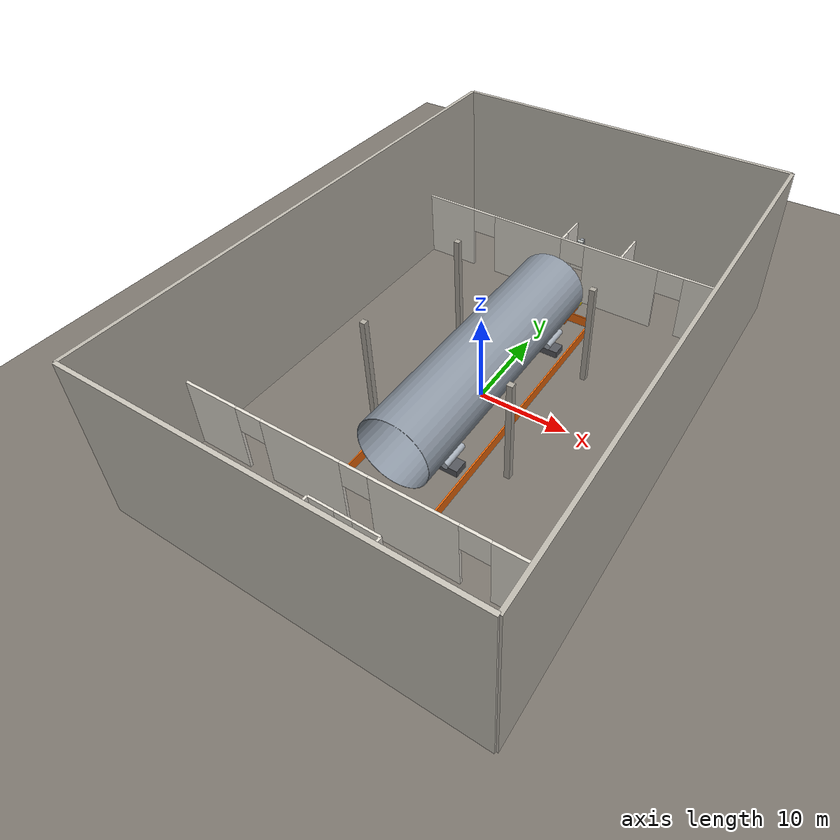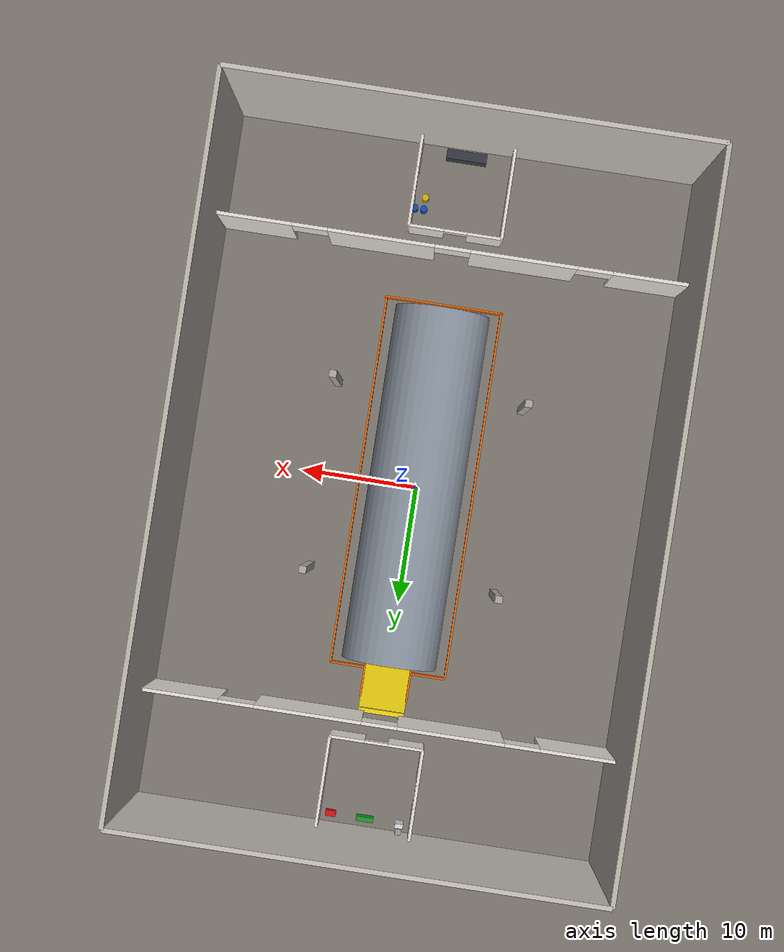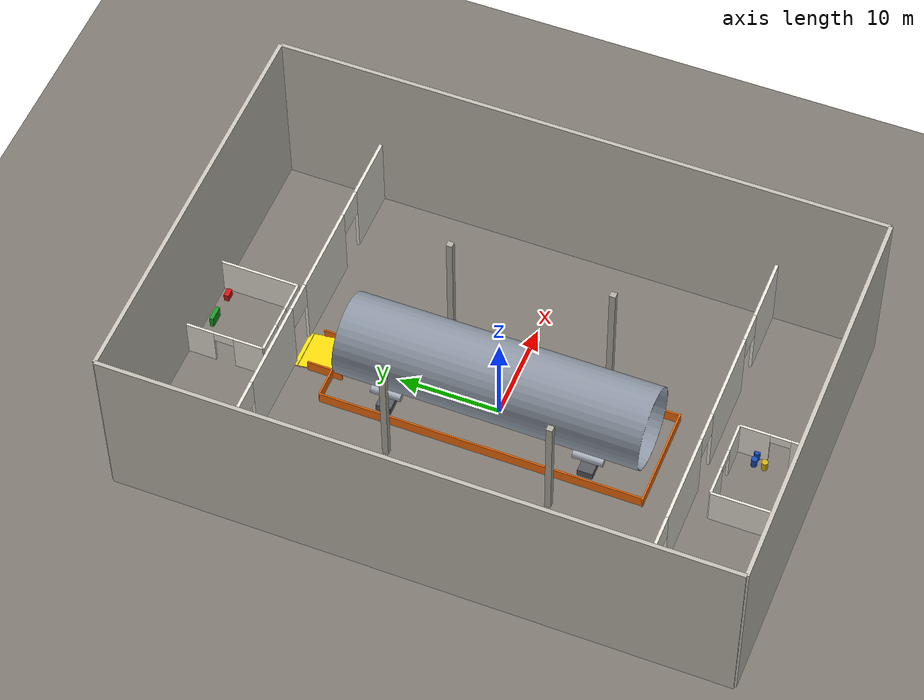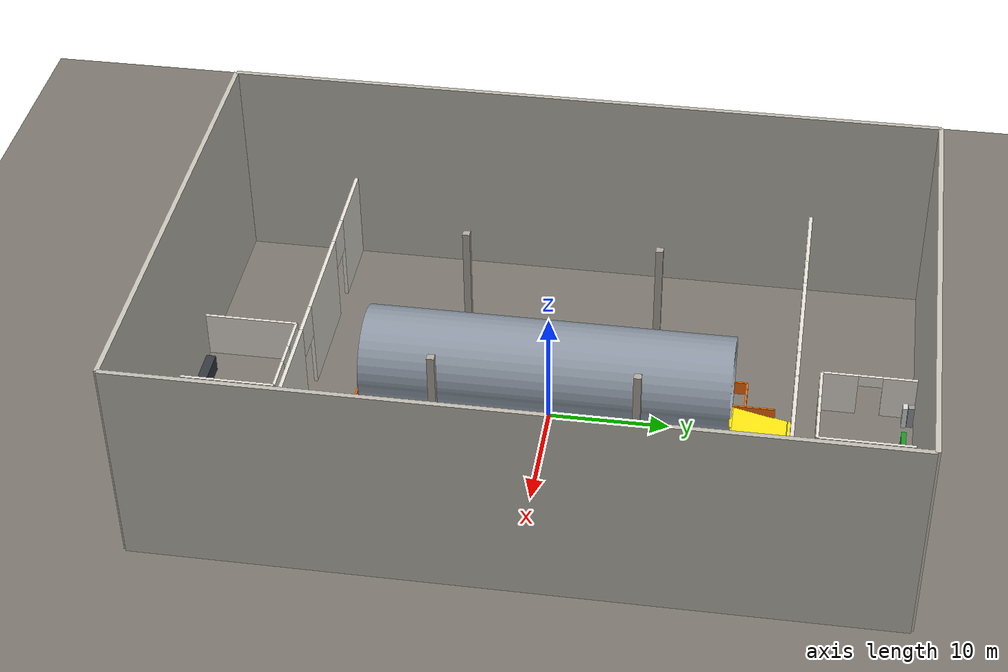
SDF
<?xml version="1.0" ?>
<sdf version="1.7">
  <world name="wind_tower_world">

    <!-- Gravedad reducida (de -9.8 a -7.5) para compensar par limitado del Husky -->
    <!-- subiendo la rampa de 13°. Reduce ~23% el peso aparente; la tracción sigue -->
    <!-- siendo suficiente con mu=3.0 + slip=0 en las superficies de la rampa. -->
    <gravity>0 0 -7.5</gravity>

    <physics type="ode">
      <max_step_size>0.004</max_step_size>
      <real_time_factor>1.0</real_time_factor>
      <real_time_update_rate>250</real_time_update_rate>
      <ode>
        <solver>
          <type>quick</type>
          <iters>50</iters>
          <sor>1.3</sor>
        </solver>
        <constraints>
          <cfm>0.0</cfm>
          <erp>0.2</erp>
          <contact_max_correcting_vel>0.2</contact_max_correcting_vel>
          <contact_surface_layer>0.001</contact_surface_layer>
        </constraints>
      </ode>
    </physics>

    <plugin name='gz::sim::systems::Physics'        filename='libgz-sim-physics-system.so'/>
    <plugin name='gz::sim::systems::UserCommands'   filename='libgz-sim-user-commands-system.so'/>
    <plugin name='gz::sim::systems::SceneBroadcaster' filename='libgz-sim-scene-broadcaster-system.so'/>
    <plugin name='gz::sim::systems::Contact'        filename='libgz-sim-contact-system.so'/>
    <plugin name="gz::sim::systems::Sensors"        filename="libgz-sim-sensors-system.so">
      <render_engine>ogre2</render_engine>
    </plugin>
    <plugin name="gz::sim::systems::Imu"    filename="libgz-sim-imu-system.so"/>
    <plugin name="gz::sim::systems::NavSat" filename="libgz-sim-navsat-system.so"/>

    <scene>
      <ambient>0.50 0.50 0.52 1</ambient>
      <background>0.18 0.18 0.22 1</background>
      <shadows>true</shadows>
    </scene>

    <light type="directional" name="sun">
      <cast_shadows>true</cast_shadows>
      <pose>0 0 25 0 0 0</pose>
      <diffuse>0.85 0.83 0.78 1</diffuse>
      <specular>0.25 0.24 0.22 1</specular>
      <direction>-0.3 0.2 -0.9</direction>
    </light>

    <!-- Fluorescentes estación de carga -->
    <light type="point" name="light_charge_A">
      <pose>0 25 6 0 0 0</pose>
      <diffuse>0.95 0.95 1.0 1</diffuse><specular>0.1 0.1 0.1 1</specular>
      <attenuation><range>15</range><constant>0.4</constant><linear>0.06</linear><quadratic>0.008</quadratic></attenuation>
      <cast_shadows>false</cast_shadows>
    </light>

    <!-- Fluorescentes sala control -->
    <light type="point" name="light_control_A">
      <pose>0 -25 6 0 0 0</pose>
      <diffuse>0.95 0.95 1.0 1</diffuse><specular>0.1 0.1 0.1 1</specular>
      <attenuation><range>15</range><constant>0.4</constant><linear>0.06</linear><quadratic>0.008</quadratic></attenuation>
      <cast_shadows>false</cast_shadows>
    </light>

    <!-- ══════════════════════════════════════════════
         SUELO — hormigón industrial pulido
         ══════════════════════════════════════════════ -->
    <model name="ground_plane">
      <static>true</static>
      <link name="link">
        <collision name="collision">
          <geometry><plane><normal>0 0 1</normal><size>200 200</size></plane></geometry>
          <surface>
            <friction><ode><mu>0.8</mu><mu2>0.8</mu2></ode></friction>
            <contact><ode>
              <kp>500000</kp><kd>100</kd>
              <max_vel>0.5</max_vel><min_depth>0.002</min_depth>
            </ode></contact>
          </surface>
        </collision>
        <visual name="visual">
          <geometry><plane><normal>0 0 1</normal><size>200 200</size></plane></geometry>
          <material>
            <ambient>0.38 0.37 0.35 1</ambient>
            <diffuse>0.48 0.46 0.43 1</diffuse>
            <specular>0.05 0.05 0.05 1</specular>
          </material>
        </visual>
      </link>
    </model>

    <model name="wall_north">
      <static>true</static><pose>0 30 9 0 0 0</pose>
      <link name="link">
        <collision name="col"><geometry><box><size>40 0.4 18</size></box></geometry></collision>
        <visual name="vis"><geometry><box><size>40 0.4 18</size></box></geometry>
          <material><ambient>0.72 0.70 0.66 1</ambient><diffuse>0.78 0.76 0.72 1</diffuse><specular>0.03 0.03 0.03 1</specular></material>
        </visual>
      </link>
    </model>
    <model name="wall_south">
      <static>true</static><pose>0 -30 9 0 0 0</pose>
      <link name="link">
        <collision name="col"><geometry><box><size>40 0.4 18</size></box></geometry></collision>
        <visual name="vis"><geometry><box><size>40 0.4 18</size></box></geometry>
          <material><ambient>0.72 0.70 0.66 1</ambient><diffuse>0.78 0.76 0.72 1</diffuse><specular>0.03 0.03 0.03 1</specular></material>
        </visual>
      </link>
    </model>
    <model name="wall_east">
      <static>true</static><pose>20 0 9 0 0 0</pose>
      <link name="link">
        <collision name="col"><geometry><box><size>0.4 60 18</size></box></geometry></collision>
        <visual name="vis"><geometry><box><size>0.4 60 18</size></box></geometry>
          <material><ambient>0.68 0.66 0.62 1</ambient><diffuse>0.74 0.72 0.68 1</diffuse><specular>0.03 0.03 0.03 1</specular></material>
        </visual>
      </link>
    </model>
    <model name="wall_west">
      <static>true</static><pose>-20 0 9 0 0 0</pose>
      <link name="link">
        <collision name="col"><geometry><box><size>0.4 60 18</size></box></geometry></collision>
        <visual name="vis"><geometry><box><size>0.4 60 18</size></box></geometry>
          <material><ambient>0.68 0.66 0.62 1</ambient><diffuse>0.74 0.72 0.68 1</diffuse><specular>0.03 0.03 0.03 1</specular></material>
        </visual>
      </link>
    </model>

    <!-- Separador norte — 3 puertas: centro (X=0) y laterales (X=±12) -->
    <!-- Segmento extremo izq: X=-20 a X=-13.5 -->
    <model name="sep_north_LW">
      <static>true</static><pose>-16.75 20 4 0 0 0</pose>
      <link name="link">
        <collision name="col"><geometry><box><size>6.5 0.3 8</size></box></geometry></collision>
        <visual name="vis"><geometry><box><size>6.5 0.3 8</size></box></geometry>
          <material><ambient>0.86 0.84 0.80 1</ambient><diffuse>0.90 0.88 0.84 1</diffuse><specular>0.04 0.04 0.04 1</specular></material>
        </visual>
      </link>
    </model>
    <!-- Segmento centro-izq: X=-10.5 a X=-1.5 -->
    <model name="sep_north_LM">
      <static>true</static><pose>-6.0 20 4 0 0 0</pose>
      <link name="link">
        <collision name="col"><geometry><box><size>9.0 0.3 8</size></box></geometry></collision>
        <visual name="vis"><geometry><box><size>9.0 0.3 8</size></box></geometry>
          <material><ambient>0.86 0.84 0.80 1</ambient><diffuse>0.90 0.88 0.84 1</diffuse><specular>0.04 0.04 0.04 1</specular></material>
        </visual>
      </link>
    </model>
    <!-- Dintel puerta centro (X=0) -->
    <model name="sep_north_lintel">
      <static>true</static><pose>0 20 6.5 0 0 0</pose>
      <link name="link">
        <collision name="col"><geometry><box><size>3.0 0.3 3.0</size></box></geometry></collision>
        <visual name="vis"><geometry><box><size>3.0 0.3 3.0</size></box></geometry>
          <material><ambient>0.86 0.84 0.80 1</ambient><diffuse>0.90 0.88 0.84 1</diffuse></material>
        </visual>
      </link>
    </model>
    <!-- Dintel puerta izquierda (X=-12) -->
    <model name="sep_north_lintel_L">
      <static>true</static><pose>-12 20 6.5 0 0 0</pose>
      <link name="link">
        <collision name="col"><geometry><box><size>3.0 0.3 3.0</size></box></geometry></collision>
        <visual name="vis"><geometry><box><size>3.0 0.3 3.0</size></box></geometry>
          <material><ambient>0.86 0.84 0.80 1</ambient><diffuse>0.90 0.88 0.84 1</diffuse></material>
        </visual>
      </link>
    </model>
    <!-- Segmento centro-der: X=+1.5 a X=+10.5 -->
    <model name="sep_north_RM">
      <static>true</static><pose>6.0 20 4 0 0 0</pose>
      <link name="link">
        <collision name="col"><geometry><box><size>9.0 0.3 8</size></box></geometry></collision>
        <visual name="vis"><geometry><box><size>9.0 0.3 8</size></box></geometry>
          <material><ambient>0.86 0.84 0.80 1</ambient><diffuse>0.90 0.88 0.84 1</diffuse><specular>0.04 0.04 0.04 1</specular></material>
        </visual>
      </link>
    </model>
    <!-- Segmento extremo der: X=+13.5 a X=+20 -->
    <model name="sep_north_RE">
      <static>true</static><pose>16.75 20 4 0 0 0</pose>
      <link name="link">
        <collision name="col"><geometry><box><size>6.5 0.3 8</size></box></geometry></collision>
        <visual name="vis"><geometry><box><size>6.5 0.3 8</size></box></geometry>
          <material><ambient>0.86 0.84 0.80 1</ambient><diffuse>0.90 0.88 0.84 1</diffuse><specular>0.04 0.04 0.04 1</specular></material>
        </visual>
      </link>
    </model>
    <!-- Dintel puerta derecha (X=+12) -->
    <model name="sep_north_lintel_R">
      <static>true</static><pose>12 20 6.5 0 0 0</pose>
      <link name="link">
        <collision name="col"><geometry><box><size>3.0 0.3 3.0</size></box></geometry></collision>
        <visual name="vis"><geometry><box><size>3.0 0.3 3.0</size></box></geometry>
          <material><ambient>0.86 0.84 0.80 1</ambient><diffuse>0.90 0.88 0.84 1</diffuse></material>
        </visual>
      </link>
    </model>

    <!-- Segmento extremo izq: X=-20 a X=-13.5 -->
    <model name="sep_south_LE">
      <static>true</static><pose>-16.75 -20 4 0 0 0</pose>
      <link name="link">
        <collision name="col"><geometry><box><size>6.5 0.3 8</size></box></geometry></collision>
        <visual name="vis"><geometry><box><size>6.5 0.3 8</size></box></geometry>
          <material><ambient>0.86 0.84 0.80 1</ambient><diffuse>0.90 0.88 0.84 1</diffuse><specular>0.04 0.04 0.04 1</specular></material>
        </visual>
      </link>
    </model>
    <!-- Dintel puerta izquierda (X=-12) -->
    <model name="sep_south_lintel_L">
      <static>true</static><pose>-12 -20 6.5 0 0 0</pose>
      <link name="link">
        <collision name="col"><geometry><box><size>3.0 0.3 3.0</size></box></geometry></collision>
        <visual name="vis"><geometry><box><size>3.0 0.3 3.0</size></box></geometry>
          <material><ambient>0.86 0.84 0.80 1</ambient><diffuse>0.90 0.88 0.84 1</diffuse></material>
        </visual>
      </link>
    </model>
    <!-- Segmento centro-izq: X=-10.5 a X=-1.5 -->
    <model name="sep_south_LM">
      <static>true</static><pose>-6.0 -20 4 0 0 0</pose>
      <link name="link">
        <collision name="col"><geometry><box><size>9.0 0.3 8</size></box></geometry></collision>
        <visual name="vis"><geometry><box><size>9.0 0.3 8</size></box></geometry>
          <material><ambient>0.86 0.84 0.80 1</ambient><diffuse>0.90 0.88 0.84 1</diffuse><specular>0.04 0.04 0.04 1</specular></material>
        </visual>
      </link>
    </model>
    <!-- Dintel puerta centro (X=0) -->
    <model name="sep_south_lintel">
      <static>true</static><pose>0 -20 6.5 0 0 0</pose>
      <link name="link">
        <collision name="col"><geometry><box><size>3.0 0.3 3.0</size></box></geometry></collision>
        <visual name="vis"><geometry><box><size>3.0 0.3 3.0</size></box></geometry>
          <material><ambient>0.86 0.84 0.80 1</ambient><diffuse>0.90 0.88 0.84 1</diffuse></material>
        </visual>
      </link>
    </model>
    <!-- Segmento centro-der: X=+1.5 a X=+10.5 -->
    <model name="sep_south_RM">
      <static>true</static><pose>6.0 -20 4 0 0 0</pose>
      <link name="link">
        <collision name="col"><geometry><box><size>9.0 0.3 8</size></box></geometry></collision>
        <visual name="vis"><geometry><box><size>9.0 0.3 8</size></box></geometry>
          <material><ambient>0.86 0.84 0.80 1</ambient><diffuse>0.90 0.88 0.84 1</diffuse><specular>0.04 0.04 0.04 1</specular></material>
        </visual>
      </link>
    </model>
    <!-- Dintel puerta derecha (X=+12) -->
    <model name="sep_south_lintel_R">
      <static>true</static><pose>12 -20 6.5 0 0 0</pose>
      <link name="link">
        <collision name="col"><geometry><box><size>3.0 0.3 3.0</size></box></geometry></collision>
        <visual name="vis"><geometry><box><size>3.0 0.3 3.0</size></box></geometry>
          <material><ambient>0.86 0.84 0.80 1</ambient><diffuse>0.90 0.88 0.84 1</diffuse></material>
        </visual>
      </link>
    </model>
    <!-- Segmento extremo der: X=+13.5 a X=+20 -->
    <model name="sep_south_RE">
      <static>true</static><pose>16.75 -20 4 0 0 0</pose>
      <link name="link">
        <collision name="col"><geometry><box><size>6.5 0.3 8</size></box></geometry></collision>
        <visual name="vis"><geometry><box><size>6.5 0.3 8</size></box></geometry>
          <material><ambient>0.86 0.84 0.80 1</ambient><diffuse>0.90 0.88 0.84 1</diffuse><specular>0.04 0.04 0.04 1</specular></material>
        </visual>
      </link>
    </model>

    <!-- Pared frontal izq -->
    <model name="charge_front_L">
      <static>true</static><pose>-2.5 22 2 0 0 0</pose>
      <link name="link">
        <collision name="col"><geometry><box><size>3.0 0.25 4</size></box></geometry></collision>
        <visual name="vis"><geometry><box><size>3.0 0.25 4</size></box></geometry>
          <material><ambient>0.86 0.84 0.80 1</ambient><diffuse>0.90 0.88 0.84 1</diffuse></material>
        </visual>
      </link>
    </model>
    <!-- Pared frontal der -->
    <model name="charge_front_R">
      <static>true</static><pose>2.5 22 2 0 0 0</pose>
      <link name="link">
        <collision name="col"><geometry><box><size>3.0 0.25 4</size></box></geometry></collision>
        <visual name="vis"><geometry><box><size>3.0 0.25 4</size></box></geometry>
          <material><ambient>0.86 0.84 0.80 1</ambient><diffuse>0.90 0.88 0.84 1</diffuse></material>
        </visual>
      </link>
    </model>
    <!-- Dintel puerta (3 m alto, dintel de z=3 a z=4) -->
    <model name="charge_front_lintel">
      <static>true</static><pose>0 22 3.5 0 0 0</pose>
      <link name="link">
        <collision name="col"><geometry><box><size>2.0 0.25 1.0</size></box></geometry></collision>
        <visual name="vis"><geometry><box><size>2.0 0.25 1.0</size></box></geometry>
          <material><ambient>0.86 0.84 0.80 1</ambient><diffuse>0.90 0.88 0.84 1</diffuse></material>
        </visual>
      </link>
    </model>
    <!-- Pared lateral oeste — con puerta lateral (Y=25 a Y=27, 2m ancho × 3m alto) -->
    <!-- Segmento norte: Y=27 a Y=30 -->
    <model name="charge_wall_W_N">
      <static>true</static><pose>-4 28.5 2 0 0 0</pose>
      <link name="link">
        <collision name="col"><geometry><box><size>0.25 3 4</size></box></geometry></collision>
        <visual name="vis"><geometry><box><size>0.25 3 4</size></box></geometry>
          <material><ambient>0.86 0.84 0.80 1</ambient><diffuse>0.90 0.88 0.84 1</diffuse></material>
        </visual>
      </link>
    </model>
    <!-- Dintel puerta lateral oeste (Y=26, z=3 a z=4) -->
    <model name="charge_wall_W_lintel">
      <static>true</static><pose>-4 26 3.5 0 0 0</pose>
      <link name="link">
        <collision name="col"><geometry><box><size>0.25 2 1</size></box></geometry></collision>
        <visual name="vis"><geometry><box><size>0.25 2 1</size></box></geometry>
          <material><ambient>0.86 0.84 0.80 1</ambient><diffuse>0.90 0.88 0.84 1</diffuse></material>
        </visual>
      </link>
    </model>
    <!-- Segmento sur: Y=22 a Y=25 -->
    <model name="charge_wall_W_S">
      <static>true</static><pose>-4 23.5 2 0 0 0</pose>
      <link name="link">
        <collision name="col"><geometry><box><size>0.25 3 4</size></box></geometry></collision>
        <visual name="vis"><geometry><box><size>0.25 3 4</size></box></geometry>
          <material><ambient>0.86 0.84 0.80 1</ambient><diffuse>0.90 0.88 0.84 1</diffuse></material>
        </visual>
      </link>
    </model>
    <!-- Pared lateral este -->
    <model name="charge_wall_E">
      <static>true</static><pose>4 26 2 0 0 0</pose>
      <link name="link">
        <collision name="col"><geometry><box><size>0.25 8 4</size></box></geometry></collision>
        <visual name="vis"><geometry><box><size>0.25 8 4</size></box></geometry>
          <material><ambient>0.86 0.84 0.80 1</ambient><diffuse>0.90 0.88 0.84 1</diffuse></material>
        </visual>
      </link>
    </model>

    <!-- Mobiliario estación de carga -->
    <!-- Dock de carga — verde seguridad RAL 6010 -->
    <model name="charging_dock">
      <static>true</static><pose>0 29 0.6 0 0 3.14159</pose>
      <link name="link">
        <collision name="col"><geometry><box><size>1.5 0.4 1.2</size></box></geometry></collision>
        <visual name="vis"><geometry><box><size>1.5 0.4 1.2</size></box></geometry>
          <material><ambient>0.08 0.48 0.12 1</ambient><diffuse>0.10 0.58 0.14 1</diffuse><specular>0.20 0.20 0.20 1</specular></material>
        </visual>
      </link>
    </model>
    <!-- Armario eléctrico — gris RAL 7035 -->
    <model name="electric_cabinet">
      <static>true</static><pose>-3 29 1.0 0 0 0</pose>
      <link name="link">
        <collision name="col"><geometry><box><size>0.7 0.4 2.0</size></box></geometry></collision>
        <visual name="vis"><geometry><box><size>0.7 0.4 2.0</size></box></geometry>
          <material><ambient>0.78 0.80 0.78 1</ambient><diffuse>0.84 0.86 0.84 1</diffuse><specular>0.15 0.15 0.15 1</specular></material>
        </visual>
      </link>
    </model>
    <!-- Caja herramientas — rojo -->
    <model name="toolbox">
      <static>true</static><pose>3 29 0.4 0 0 0</pose>
      <link name="link">
        <collision name="col"><geometry><box><size>0.9 0.5 0.8</size></box></geometry></collision>
        <visual name="vis"><geometry><box><size>0.9 0.5 0.8</size></box></geometry>
          <material><ambient>0.72 0.06 0.06 1</ambient><diffuse>0.82 0.07 0.07 1</diffuse><specular>0.30 0.30 0.30 1</specular></material>
        </visual>
      </link>
    </model>

    <model name="ctrl_front_L">
      <static>true</static><pose>-2.5 -22 2 0 0 0</pose>
      <link name="link">
        <collision name="col"><geometry><box><size>3.0 0.25 4</size></box></geometry></collision>
        <visual name="vis"><geometry><box><size>3.0 0.25 4</size></box></geometry>
          <material><ambient>0.86 0.84 0.80 1</ambient><diffuse>0.90 0.88 0.84 1</diffuse></material>
        </visual>
      </link>
    </model>
    <model name="ctrl_front_R">
      <static>true</static><pose>2.5 -22 2 0 0 0</pose>
      <link name="link">
        <collision name="col"><geometry><box><size>3.0 0.25 4</size></box></geometry></collision>
        <visual name="vis"><geometry><box><size>3.0 0.25 4</size></box></geometry>
          <material><ambient>0.86 0.84 0.80 1</ambient><diffuse>0.90 0.88 0.84 1</diffuse></material>
        </visual>
      </link>
    </model>
    <model name="ctrl_front_lintel">
      <static>true</static><pose>0 -22 3.5 0 0 0</pose>
      <link name="link">
        <collision name="col"><geometry><box><size>2.0 0.25 1.0</size></box></geometry></collision>
        <visual name="vis"><geometry><box><size>2.0 0.25 1.0</size></box></geometry>
          <material><ambient>0.86 0.84 0.80 1</ambient><diffuse>0.90 0.88 0.84 1</diffuse></material>
        </visual>
      </link>
    </model>
    <model name="ctrl_wall_W">
      <static>true</static><pose>-4 -26 2 0 0 0</pose>
      <link name="link">
        <collision name="col"><geometry><box><size>0.25 8 4</size></box></geometry></collision>
        <visual name="vis"><geometry><box><size>0.25 8 4</size></box></geometry>
          <material><ambient>0.86 0.84 0.80 1</ambient><diffuse>0.90 0.88 0.84 1</diffuse></material>
        </visual>
      </link>
    </model>
    <!-- Pared lateral este — con puerta lateral (Y=-25 a Y=-27, 2m ancho × 3m alto) -->
    <!-- Segmento norte: Y=-22 a Y=-25 -->
    <model name="ctrl_wall_E_N">
      <static>true</static><pose>4 -23.5 2 0 0 0</pose>
      <link name="link">
        <collision name="col"><geometry><box><size>0.25 3 4</size></box></geometry></collision>
        <visual name="vis"><geometry><box><size>0.25 3 4</size></box></geometry>
          <material><ambient>0.86 0.84 0.80 1</ambient><diffuse>0.90 0.88 0.84 1</diffuse></material>
        </visual>
      </link>
    </model>
    <!-- Dintel puerta lateral este (Y=-26, z=3 a z=4) -->
    <model name="ctrl_wall_E_lintel">
      <static>true</static><pose>4 -26 3.5 0 0 0</pose>
      <link name="link">
        <collision name="col"><geometry><box><size>0.25 2 1</size></box></geometry></collision>
        <visual name="vis"><geometry><box><size>0.25 2 1</size></box></geometry>
          <material><ambient>0.86 0.84 0.80 1</ambient><diffuse>0.90 0.88 0.84 1</diffuse></material>
        </visual>
      </link>
    </model>
    <!-- Segmento sur: Y=-27 a Y=-30 -->
    <model name="ctrl_wall_E_S">
      <static>true</static><pose>4 -28.5 2 0 0 0</pose>
      <link name="link">
        <collision name="col"><geometry><box><size>0.25 3 4</size></box></geometry></collision>
        <visual name="vis"><geometry><box><size>0.25 3 4</size></box></geometry>
          <material><ambient>0.86 0.84 0.80 1</ambient><diffuse>0.90 0.88 0.84 1</diffuse></material>
        </visual>
      </link>
    </model>

    <!-- Mobiliario sala de control -->
    <!-- Consola — antracita RAL 7016 -->
    <model name="control_console">
      <static>true</static><pose>0 -29 0.75 0 0 0</pose>
      <link name="link">
        <collision name="col"><geometry><box><size>3.5 0.8 1.5</size></box></geometry></collision>
        <visual name="vis"><geometry><box><size>3.5 0.8 1.5</size></box></geometry>
          <material><ambient>0.16 0.18 0.20 1</ambient><diffuse>0.20 0.22 0.25 1</diffuse><specular>0.25 0.25 0.25 1</specular></material>
        </visual>
      </link>
    </model>
    <!-- Estantería — acero galvanizado -->
    <model name="shelf_storage">
      <static>true</static><pose>-3 29.5 1.0 0 0 0</pose>
      <link name="link">
        <collision name="col"><geometry><box><size>0.5 0.5 2.0</size></box></geometry></collision>
        <visual name="vis"><geometry><box><size>0.5 0.5 2.0</size></box></geometry>
          <material><ambient>0.50 0.52 0.54 1</ambient><diffuse>0.58 0.60 0.62 1</diffuse><specular>0.20 0.20 0.20 1</specular></material>
        </visual>
      </link>
    </model>
    <!-- Bidones -->
    <model name="barrel_blue_1">
      <static>true</static><pose>3 -24 0.5 0 0 0</pose>
      <link name="link">
        <collision name="col"><geometry><cylinder><radius>0.3</radius><length>1.0</length></cylinder></geometry></collision>
        <visual name="vis"><geometry><cylinder><radius>0.3</radius><length>1.0</length></cylinder></geometry>
          <material><ambient>0.06 0.22 0.60 1</ambient><diffuse>0.08 0.28 0.72 1</diffuse><specular>0.20 0.20 0.20 1</specular></material>
        </visual>
      </link>
    </model>
    <model name="barrel_blue_2">
      <static>true</static><pose>3.8 -24 0.5 0 0 0</pose>
      <link name="link">
        <collision name="col"><geometry><cylinder><radius>0.3</radius><length>1.0</length></cylinder></geometry></collision>
        <visual name="vis"><geometry><cylinder><radius>0.3</radius><length>1.0</length></cylinder></geometry>
          <material><ambient>0.06 0.22 0.60 1</ambient><diffuse>0.08 0.28 0.72 1</diffuse><specular>0.20 0.20 0.20 1</specular></material>
        </visual>
      </link>
    </model>
    <model name="barrel_yellow">
      <static>true</static><pose>3 -25 0.5 0 0 0</pose>
      <link name="link">
        <collision name="col"><geometry><cylinder><radius>0.3</radius><length>1.0</length></cylinder></geometry></collision>
        <visual name="vis"><geometry><cylinder><radius>0.3</radius><length>1.0</length></cylinder></geometry>
          <material><ambient>0.72 0.58 0.04 1</ambient><diffuse>0.82 0.68 0.05 1</diffuse><specular>0.20 0.20 0.20 1</specular></material>
        </visual>
      </link>
    </model>

    <!-- ══════════════════════════════════════════════
         COLUMNAS — hormigón armado (landmarks SLAM)
         ══════════════════════════════════════════════ -->
    <model name="column_NE">
      <static>true</static><pose>8 8 6 0 0 0</pose>
      <link name="link">
        <collision name="col"><geometry><box><size>0.6 0.6 12</size></box></geometry></collision>
        <visual name="vis"><geometry><box><size>0.6 0.6 12</size></box></geometry>
          <material><ambient>0.62 0.60 0.57 1</ambient><diffuse>0.68 0.66 0.62 1</diffuse><specular>0.04 0.04 0.04 1</specular></material>
        </visual>
      </link>
    </model>
    <model name="column_NW">
      <static>true</static><pose>-8 8 6 0 0 0</pose>
      <link name="link">
        <collision name="col"><geometry><box><size>0.6 0.6 12</size></box></geometry></collision>
        <visual name="vis"><geometry><box><size>0.6 0.6 12</size></box></geometry>
          <material><ambient>0.62 0.60 0.57 1</ambient><diffuse>0.68 0.66 0.62 1</diffuse><specular>0.04 0.04 0.04 1</specular></material>
        </visual>
      </link>
    </model>
    <model name="column_SE">
      <static>true</static><pose>8 -8 6 0 0 0</pose>
      <link name="link">
        <collision name="col"><geometry><box><size>0.6 0.6 12</size></box></geometry></collision>
        <visual name="vis"><geometry><box><size>0.6 0.6 12</size></box></geometry>
          <material><ambient>0.62 0.60 0.57 1</ambient><diffuse>0.68 0.66 0.62 1</diffuse><specular>0.04 0.04 0.04 1</specular></material>
        </visual>
      </link>
    </model>
    <model name="column_SW">
      <static>true</static><pose>-8 -8 6 0 0 0</pose>
      <link name="link">
        <collision name="col"><geometry><box><size>0.6 0.6 12</size></box></geometry></collision>
        <visual name="vis"><geometry><box><size>0.6 0.6 12</size></box></geometry>
          <material><ambient>0.62 0.60 0.57 1</ambient><diffuse>0.68 0.66 0.62 1</diffuse><specular>0.04 0.04 0.04 1</specular></material>
        </visual>
      </link>
    </model>

    <!-- ══════════════════════════════════════════════
         TRAMO DE TORRE EÓLICA — elevado 1 m
         Centro sección (mundo): x=0, z=5
         ══════════════════════════════════════════════ -->
    <model name="wind_tower_tube">
      <static>false</static>
      <pose>-4 15 1 1.5708 0 0</pose>
      <link name="tube_link">
        <inertial>
          <mass>2000</mass>
          <inertia>
            <ixx>155000</ixx><ixy>0</ixy><ixz>0</ixz>
            <iyy>155000</iyy><iyz>0</iyz>
            <izz>32000</izz>
          </inertia>
        </inertial>
        <visual name="visual">
          <geometry>
            <mesh><uri>model://TRAMO_TORRE.STL</uri><scale>0.001 0.001 0.001</scale></mesh>
          </geometry>
          <material>
            <ambient>0.48 0.52 0.56 1</ambient>
            <diffuse>0.55 0.59 0.64 1</diffuse>
            <specular>0.35 0.35 0.35 1</specular>
          </material>
        </visual>
        <collision name="collision">
          <geometry>
            <mesh><uri>model://TRAMO_TORRE.STL</uri><scale>0.001 0.001 0.001</scale></mesh>
          </geometry>
        </collision>
      </link>

      <joint name="turner_joint" type="revolute">
        <parent>world</parent>
        <child>tube_link</child>
        <pose>4.0 4.0 0 0 0 0</pose>
        <axis>
          <xyz expressed_in="__model__">0 0 1</xyz>
          <limit><lower>-1e16</lower><upper>1e16</upper></limit>
          <dynamics><damping>2.0</damping><friction>0.1</friction></dynamics>
        </axis>
      </joint>

      <plugin filename="gz-sim-joint-controller-system"
              name="gz::sim::systems::JointController">
        <joint_name>turner_joint</joint_name>
        <use_force_commands>false</use_force_commands>
        <initial_velocity>0.0</initial_velocity>
      </plugin>
      <plugin filename="gz-sim-joint-state-publisher-system"
              name="gz::sim::systems::JointStatePublisher"/>
    </model>

    <!-- Bastidor norte (Y=+10) — acero RAL 7022 -->
    <model name="roller_frame_north">
      <static>true</static><pose>0 10 0.4 0 0 0</pose>
      <link name="link">
        <collision name="col"><geometry><box><size>8.0 1.5 0.8</size></box></geometry></collision>
        <visual name="vis"><geometry><box><size>8.0 1.5 0.8</size></box></geometry>
          <material><ambient>0.28 0.29 0.30 1</ambient><diffuse>0.33 0.34 0.36 1</diffuse><specular>0.12 0.12 0.12 1</specular></material>
        </visual>
      </link>
    </model>

    <!-- Rodillo norte derecho — eje paralelo al tubo (Y) -->
    <model name="roller_N_right">
      <static>true</static>
      <pose>3.11 10 1.89 1.5708 0 0</pose>
      <link name="link">
        <collision name="col"><geometry><cylinder><radius>0.4</radius><length>3.0</length></cylinder></geometry></collision>
        <visual name="vis"><geometry><cylinder><radius>0.4</radius><length>3.0</length></cylinder></geometry>
          <material><ambient>0.55 0.57 0.60 1</ambient><diffuse>0.65 0.68 0.72 1</diffuse><specular>0.70 0.70 0.70 1</specular></material>
        </visual>
      </link>
    </model>

    <!-- Rodillo norte izquierdo — eje paralelo al tubo (Y) -->
    <model name="roller_N_left">
      <static>true</static>
      <pose>-3.11 10 1.89 1.5708 0 0</pose>
      <link name="link">
        <collision name="col"><geometry><cylinder><radius>0.4</radius><length>3.0</length></cylinder></geometry></collision>
        <visual name="vis"><geometry><cylinder><radius>0.4</radius><length>3.0</length></cylinder></geometry>
          <material><ambient>0.55 0.57 0.60 1</ambient><diffuse>0.65 0.68 0.72 1</diffuse><specular>0.70 0.70 0.70 1</specular></material>
        </visual>
      </link>
    </model>

    <!-- Cuña de entrada norte: suaviza discontinuidad 0°→13° en dos pasos -->
    <!-- Cubre Y=19.6 a 20.0 con inclinación media (6.5°, roll=-0.115 rad)  -->
    <!-- z_c=-0.056: cierra gap <1mm con cuerpo principal en Y=19.6 -->
    <!-- Fricción mu=3.0 (antes 1.5) + slip nulo para reducir el patinaje -->
    <!-- al pasar por la transición de pendiente. -->
    <model name="ramp_north_entry">
      <static>true</static>
      <pose>0 19.8 -0.056 -0.115 0 0</pose>
      <link name="link">
        <collision name="col">
          <geometry><box><size>4.0 0.4 0.15</size></box></geometry>
          <surface>
            <friction>
              <ode>
                <mu>3.0</mu>
                <mu2>3.0</mu2>
                <slip1>0.0</slip1>
                <slip2>0.0</slip2>
              </ode>
            </friction>
            <contact><ode>
              <kp>1000000</kp><kd>50</kd>
              <max_vel>0.1</max_vel><min_depth>0.001</min_depth>
            </ode></contact>
          </surface>
        </collision>
        <visual name="vis">
          <geometry><box><size>4.0 0.4 0.15</size></box></geometry>
          <material>
            <ambient>0.90 0.78 0.04 1</ambient><diffuse>1.0 0.88 0.05 1</diffuse>
            <specular>0.25 0.25 0.25 1</specular>
          </material>
        </visual>
      </link>
    </model>

    <!-- Cuerpo principal de la rampa norte (Y=15 a Y=19.6) -->
    <!-- Termina EXACTAMENTE en Y=15 (borde tubo), sin meterse dentro     -->
    <!-- z_c=0.497 → entrada Y=19.6 a z=0.046m, tubo Y=15 a z=1.094m    -->
    <!-- Fricción mu=3.0 (antes 1.5) + slip1/slip2 = 0 + max_vel=0.1: -->
    <!-- triplica el coeficiente de fricción Coulomb y reduce el slip ODE -->
    <!-- para que las ruedas del Husky agarren con par limitado en 13°. -->
    <!-- min_depth bajado (0.002→0.001) → contacto menos hundido → patch -->
    <!-- de contacto más realista y mayor presión normal efectiva. -->
    <model name="ramp_north">
      <static>true</static>
      <pose>0 17.3 0.497 -0.230 0 0</pose>
      <link name="link">
        <collision name="col">
          <geometry><box><size>4.0 4.6 0.15</size></box></geometry>
          <surface>
            <friction>
              <ode>
                <mu>3.0</mu>
                <mu2>3.0</mu2>
                <slip1>0.0</slip1>
                <slip2>0.0</slip2>
              </ode>
            </friction>
            <contact><ode>
              <kp>1000000</kp><kd>50</kd>
              <max_vel>0.1</max_vel><min_depth>0.001</min_depth>
            </ode></contact>
          </surface>
        </collision>
        <visual name="vis">
          <geometry><box><size>4.0 4.6 0.15</size></box></geometry>
          <material>
            <ambient>0.90 0.78 0.04 1</ambient>
            <diffuse>1.0  0.88 0.05 1</diffuse>
            <specular>0.25 0.25 0.25 1</specular>
          </material>
        </visual>
      </link>
    </model>

    <model name="ramp_inner">
      <static>true</static>
      <pose>0 11.05 0.972 0.01161 0 0</pose>
      <link name="link">
        <collision name="col">
          <geometry><box><size>4.0 8.1 0.15</size></box></geometry>
          <surface>
            <friction>
              <ode>
                <mu>3.0</mu>
                <mu2>3.0</mu2>
                <slip1>0.0</slip1>
                <slip2>0.0</slip2>
              </ode>
            </friction>
            <contact><ode>
              <kp>1000000</kp><kd>50</kd>
              <max_vel>0.1</max_vel><min_depth>0.001</min_depth>
            </ode></contact>
          </surface>
        </collision>
        <visual name="vis">
          <geometry><box><size>4.0 8.1 0.15</size></box></geometry>
          <material>
            <ambient>0.90 0.78 0.04 1</ambient>
            <diffuse>1.0  0.88 0.05 1</diffuse>
            <specular>0.25 0.25 0.25 1</specular>
          </material>
        </visual>
      </link>
    </model>

    <!-- Barrera sur (cierra extremo Y=-16) -->
    <model name="barrier_south">
      <static>true</static><pose>0 -16 0.6 0 0 0</pose>
      <link name="link">
        <collision name="col"><geometry><box><size>10.3 0.15 1.2</size></box></geometry></collision>
        <visual name="vis"><geometry><box><size>10.3 0.15 1.2</size></box></geometry>
          <material><ambient>0.85 0.35 0.03 1</ambient><diffuse>0.95 0.42 0.04 1</diffuse><specular>0.25 0.25 0.25 1</specular></material>
        </visual>
      </link>
    </model>

    <!-- Barrera este (X=+5, Y=-16 a Y=+16) -->
    <model name="barrier_east">
      <static>true</static><pose>5 0 0.6 0 0 0</pose>
      <link name="link">
        <collision name="col"><geometry><box><size>0.15 32.0 1.2</size></box></geometry></collision>
        <visual name="vis"><geometry><box><size>0.15 32.0 1.2</size></box></geometry>
          <material><ambient>0.85 0.35 0.03 1</ambient><diffuse>0.95 0.42 0.04 1</diffuse><specular>0.25 0.25 0.25 1</specular></material>
        </visual>
      </link>
    </model>

    <!-- Barrera oeste (X=-5, Y=-16 a Y=+16) -->
    <model name="barrier_west">
      <static>true</static><pose>-5 0 0.6 0 0 0</pose>
      <link name="link">
        <collision name="col"><geometry><box><size>0.15 32.0 1.2</size></box></geometry></collision>
        <visual name="vis"><geometry><box><size>0.15 32.0 1.2</size></box></geometry>
          <material><ambient>0.85 0.35 0.03 1</ambient><diffuse>0.95 0.42 0.04 1</diffuse><specular>0.25 0.25 0.25 1</specular></material>
        </visual>
      </link>
    </model>

    <!-- Barrera norte izquierda (Y=+16, X=-5 a -2.0) — apertura 4 m -->
    <model name="barrier_north_L">
      <static>true</static><pose>-3.5 16 0.6 0 0 0</pose>
      <link name="link">
        <collision name="col"><geometry><box><size>3.0 0.15 1.2</size></box></geometry></collision>
        <visual name="vis"><geometry><box><size>3.0 0.15 1.2</size></box></geometry>
          <material><ambient>0.85 0.35 0.03 1</ambient><diffuse>0.95 0.42 0.04 1</diffuse><specular>0.25 0.25 0.25 1</specular></material>
        </visual>
      </link>
    </model>

    <!-- Barrera norte derecha (Y=+16, X=+2.0 a +5) — apertura 4 m -->
    <model name="barrier_north_R">
      <static>true</static><pose>3.5 16 0.6 0 0 0</pose>
      <link name="link">
        <collision name="col"><geometry><box><size>3.0 0.15 1.2</size></box></geometry></collision>
        <visual name="vis"><geometry><box><size>3.0 0.15 1.2</size></box></geometry>
          <material><ambient>0.85 0.35 0.03 1</ambient><diffuse>0.95 0.42 0.04 1</diffuse><specular>0.25 0.25 0.25 1</specular></material>
        </visual>
      </link>
    </model>

    <!-- Barandilla rampa norte lado oeste — acortada a Y=15–18.5 (3.5m) -->
    <!-- Deja libre Y=18.5–20 a los lados para que el robot pueda rodear la rampa -->
    <model name="barrier_ramp_W">
      <static>true</static><pose>-2.0 16.75 0.6 0 0 0</pose>
      <link name="link">
        <collision name="col"><geometry><box><size>0.15 3.5 1.2</size></box></geometry></collision>
        <visual name="vis"><geometry><box><size>0.15 3.5 1.2</size></box></geometry>
          <material><ambient>0.85 0.35 0.03 1</ambient><diffuse>0.95 0.42 0.04 1</diffuse><specular>0.25 0.25 0.25 1</specular></material>
        </visual>
      </link>
    </model>

    <!-- Barandilla rampa norte lado este — acortada a Y=15–18.5 (3.5m) -->
    <model name="barrier_ramp_E">
      <static>true</static><pose>2.0 16.75 0.6 0 0 0</pose>
      <link name="link">
        <collision name="col"><geometry><box><size>0.15 3.5 1.2</size></box></geometry></collision>
        <visual name="vis"><geometry><box><size>0.15 3.5 1.2</size></box></geometry>
          <material><ambient>0.85 0.35 0.03 1</ambient><diffuse>0.95 0.42 0.04 1</diffuse><specular>0.25 0.25 0.25 1</specular></material>
        </visual>
      </link>
    </model>

    <!-- Bastidor sur (Y=-10) -->
    <model name="roller_frame_south">
      <static>true</static><pose>0 -10 0.4 0 0 0</pose>
      <link name="link">
        <collision name="col"><geometry><box><size>8.0 1.5 0.8</size></box></geometry></collision>
        <visual name="vis"><geometry><box><size>8.0 1.5 0.8</size></box></geometry>
          <material><ambient>0.28 0.29 0.30 1</ambient><diffuse>0.33 0.34 0.36 1</diffuse><specular>0.12 0.12 0.12 1</specular></material>
        </visual>
      </link>
    </model>

    <!-- Rodillo sur derecho — eje paralelo al tubo (Y) -->
    <model name="roller_S_right">
      <static>true</static>
      <pose>3.11 -10 1.89 1.5708 0 0</pose>
      <link name="link">
        <collision name="col"><geometry><cylinder><radius>0.4</radius><length>3.0</length></cylinder></geometry></collision>
        <visual name="vis"><geometry><cylinder><radius>0.4</radius><length>3.0</length></cylinder></geometry>
          <material><ambient>0.55 0.57 0.60 1</ambient><diffuse>0.65 0.68 0.72 1</diffuse><specular>0.70 0.70 0.70 1</specular></material>
        </visual>
      </link>
    </model>

    <!-- Rodillo sur izquierdo — eje paralelo al tubo (Y) -->
    <model name="roller_S_left">
      <static>true</static>
      <pose>-3.11 -10 1.89 1.5708 0 0</pose>
      <link name="link">
        <collision name="col"><geometry><cylinder><radius>0.4</radius><length>3.0</length></cylinder></geometry></collision>
        <visual name="vis"><geometry><cylinder><radius>0.4</radius><length>3.0</length></cylinder></geometry>
          <material><ambient>0.55 0.57 0.60 1</ambient><diffuse>0.65 0.68 0.72 1</diffuse><specular>0.70 0.70 0.70 1</specular></material>
        </visual>
      </link>
    </model>

  </world>
</sdf>
